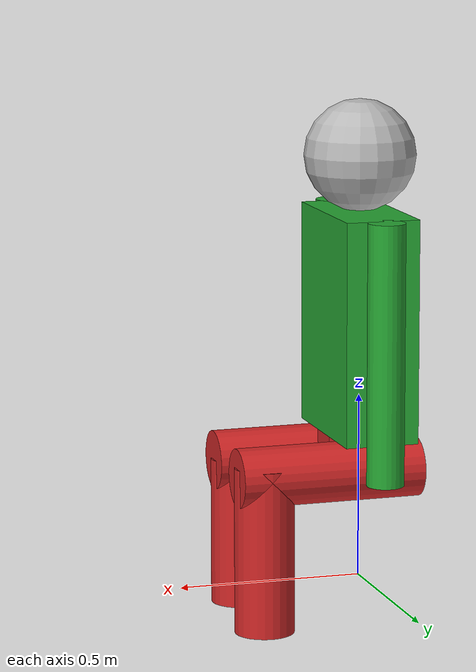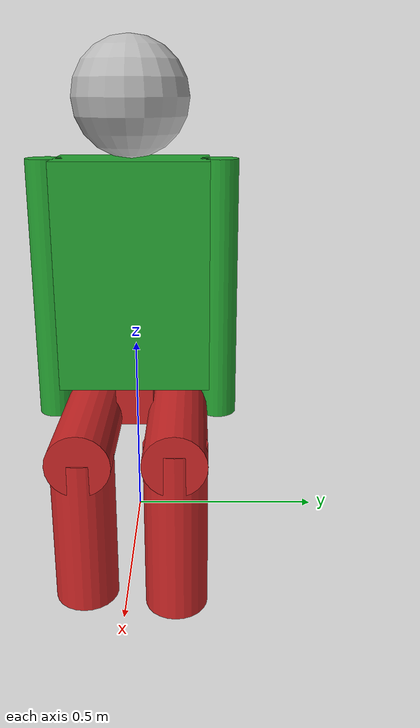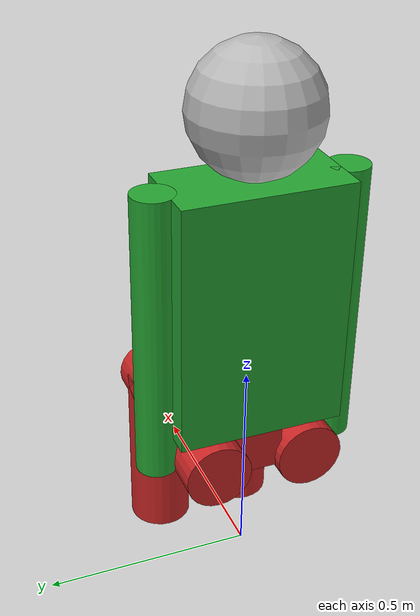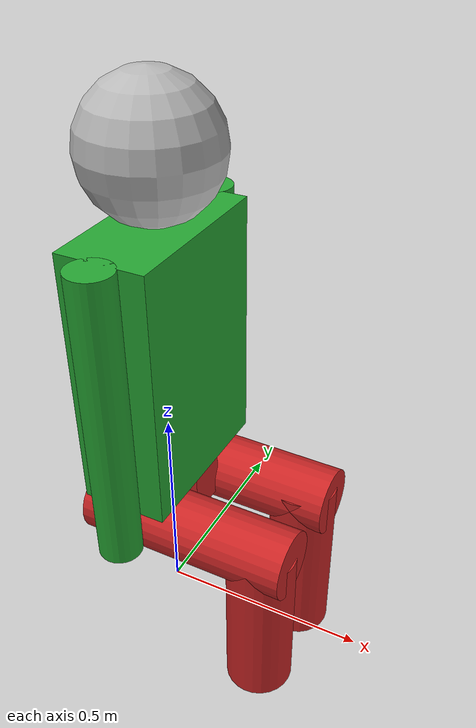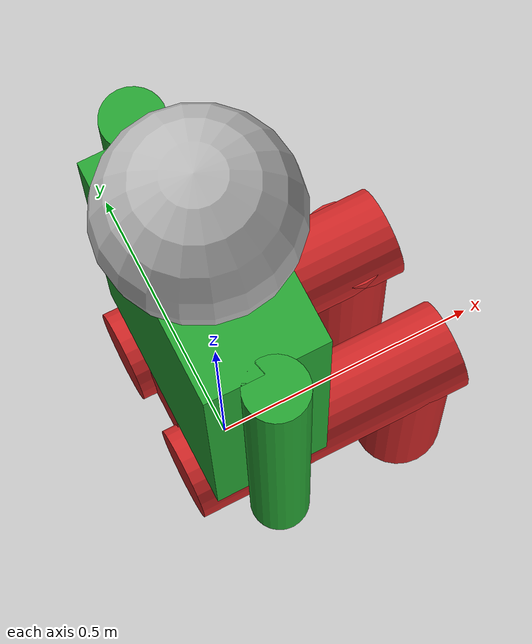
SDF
<?xml version='1.0'?>
<sdf version='1.4'>
  <model name="person_siting">
    <static>true</static>
    <link name="person_siting">
      <visual name="torso_top">
	<pose>0 0 0.7 0 0 0</pose>
	<geometry>
	  <box>
	    <size>0.2 0.4 0.6</size>
	  </box>
	</geometry>
	<material>
          <script>
            <uri>file://media/materials/scripts/gazebo.material</uri>
            <name>Gazebo/Green</name>
          </script>
        </material>
      </visual>
      <visual name="torso_bottom">
	<pose>0 0 0.35 0 0 0</pose>
	<geometry>
	  <box>
	    <size>0.2 0.1 0.1</size>
	  </box>
	</geometry>
	<material>
          <script>
            <uri>file://media/materials/scripts/gazebo.material</uri>
            <name>Gazebo/Red</name>
          </script>
        </material>
      </visual>
      <collision name="torso_top">
	<pose>0 0 0.7 0 0 0</pose>
	<geometry>
	  <box>
	    <size>0.2 0.4 0.6</size>
	  </box>
	</geometry>
      </collision>
      <collision name="torso_bottom">
	<pose>0 0 0.35 0 0 0</pose>
	<geometry>
	  <box>
	    <size>0.2 0.1 0.1</size>
	  </box>
	</geometry>
      </collision>

      <visual name="head">
	<pose>0 0 1.15 0 0 0</pose>
	<geometry>
	  <sphere>
	    <radius>0.15</radius>
	  </sphere>
	</geometry>
	<material>
          <script>
            <uri>file://media/materials/scripts/gazebo.material</uri>
            <name>Gazebo/SmileyHappy</name>
          </script>
        </material>
      </visual>
      <collision name = "head">
	<pose>0 0 1.15 0 0 0</pose>
	<geometry>
	  <sphere>
	    <radius>0.15</radius>
	  </sphere>
	</geometry>
      </collision>

      <visual name="left_arm">
	<pose>0 0.225 0.65 0 0 0</pose>
	<geometry>
	  <cylinder>
	    <radius>0.05</radius>
	    <length>0.70</length>
	  </cylinder>
	</geometry>
	<material>
          <script>
            <uri>file://media/materials/scripts/gazebo.material</uri>
            <name>Gazebo/Green</name>
          </script>
        </material>
      </visual>
      <collision name="left_arm">
	<pose>0 0.225 0.65 0 0 0</pose>
	<geometry>
	  <cylinder>
	    <radius>0.05</radius>
	    <length>0.70</length>
	  </cylinder>
	</geometry>
      </collision>

      <visual name ="right_arm">
	<pose>0 -0.225 0.65 0 0 0</pose>
	<geometry>
	  <cylinder>
	    <radius>0.05</radius>
	    <length>0.70</length>
	  </cylinder>
	</geometry>
	<material>
          <script>
            <uri>file://media/materials/scripts/gazebo.material</uri>
            <name>Gazebo/Green</name>
          </script>
        </material>
      </visual>
      <collision name ="right_arm">
	<pose>0 -0.225 0.65 0 0 0</pose>
	<geometry>
	  <cylinder>
	    <radius>0.05</radius>
	    <length>0.70</length>
	  </cylinder>
	</geometry>
      </collision>

      <visual name ="left_leg1">
	<pose>0.125 0.115 0.32 0 1.5757 0</pose>
	<geometry>
	  <cylinder>
	    <radius>0.08</radius>
	    <length>0.50</length>
	  </cylinder>
	</geometry>
	<material>
          <script>
            <uri>file://media/materials/scripts/gazebo.material</uri>
            <name>Gazebo/Red</name>
          </script>
        </material>
      </visual>
      <visual name ="left_leg2">
	<pose>0.3 0.115 0.12 0 0 0</pose>
	<geometry>
	  <cylinder>
	    <radius>0.08</radius>
	    <length>0.450</length>
	  </cylinder>
	</geometry>
	<material>
          <script>
            <uri>file://media/materials/scripts/gazebo.material</uri>
            <name>Gazebo/Red</name>
          </script>
        </material>
      </visual>
      <collision name ="left_leg1">
	<pose>0.125 0.115 0.32 0 1.5757 0</pose>
	<geometry>
	  <cylinder>
	    <radius>0.08</radius>
	    <length>0.50</length>
	  </cylinder>
	</geometry>
      </collision>
      <collision name ="left_leg2">
	<pose>0.3 0.115 0.12 0 0 0</pose>
	<geometry>
	  <cylinder>
	    <radius>0.08</radius>
	    <length>0.40</length>
	  </cylinder>
	</geometry>
      </collision>

      <visual name ="right_leg1">
	<pose>0.125 -0.115 0.32 0 1.5757 0</pose>
	<geometry>
	  <cylinder>
	    <radius>0.08</radius>
	    <length>0.50</length>
	  </cylinder>
	</geometry>
	<material>
          <script>
            <uri>file://media/materials/scripts/gazebo.material</uri>
            <name>Gazebo/Red</name>
          </script>
        </material>
      </visual>
      <visual name ="right_leg2">
	<pose>0.3 -0.115 0.12 0 0 0</pose>
	<geometry>
	  <cylinder>
	    <radius>0.08</radius>
	    <length>0.40</length>
	  </cylinder>
	</geometry>
	<material>
          <script>
            <uri>file://media/materials/scripts/gazebo.material</uri>
            <name>Gazebo/Red</name>
          </script>
        </material>
      </visual>
      <collision name ="right_leg1">
	<pose>0.125 -0.115 0.32 0 1.5757 0</pose>
	<geometry>
	  <cylinder>
	    <radius>0.08</radius>
	    <length>0.5</length>
	  </cylinder>
	</geometry>
      </collision>
      <collision name ="right_leg2">
	<pose>0.3 -0.115 0.12 0 0 0</pose>
	<geometry>
	  <cylinder>
	    <radius>0.08</radius>
	    <length>0.4</length>
	  </cylinder>
	</geometry>
      </collision>
    </link>
  </model>
</sdf>
